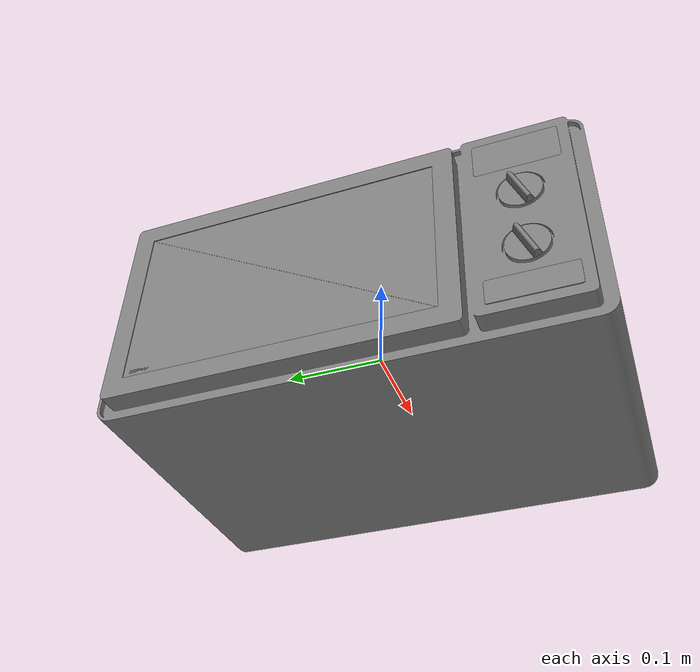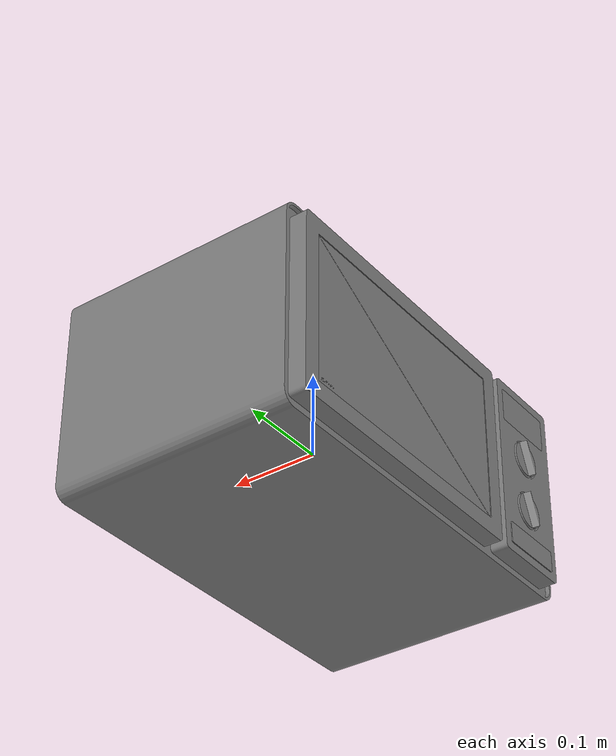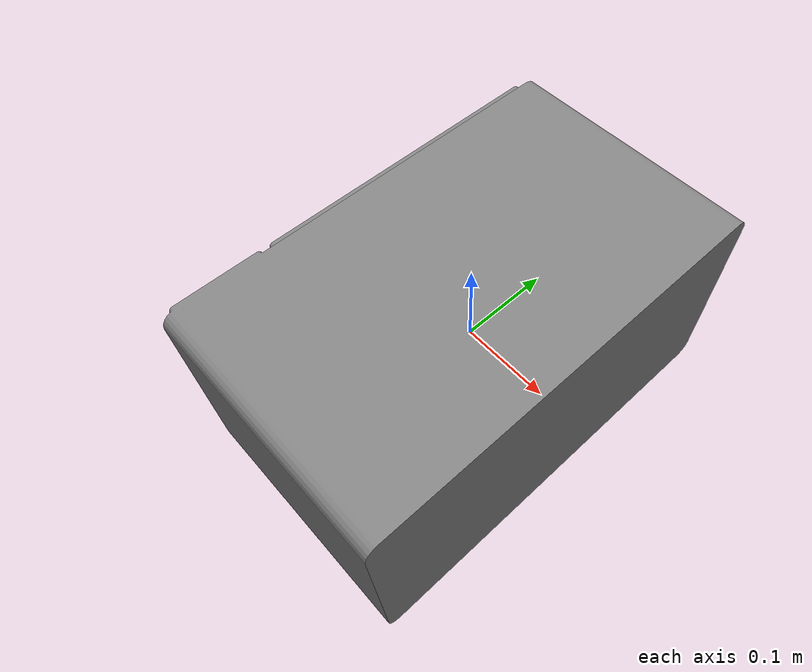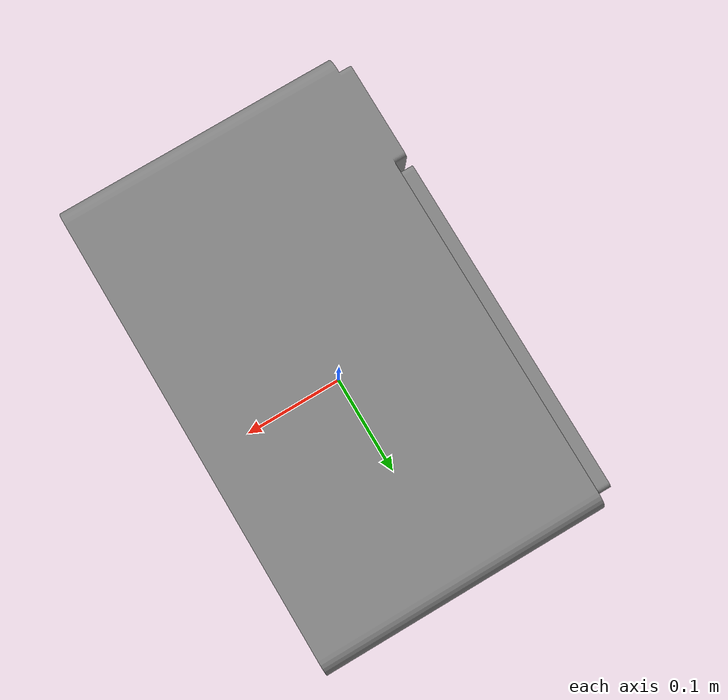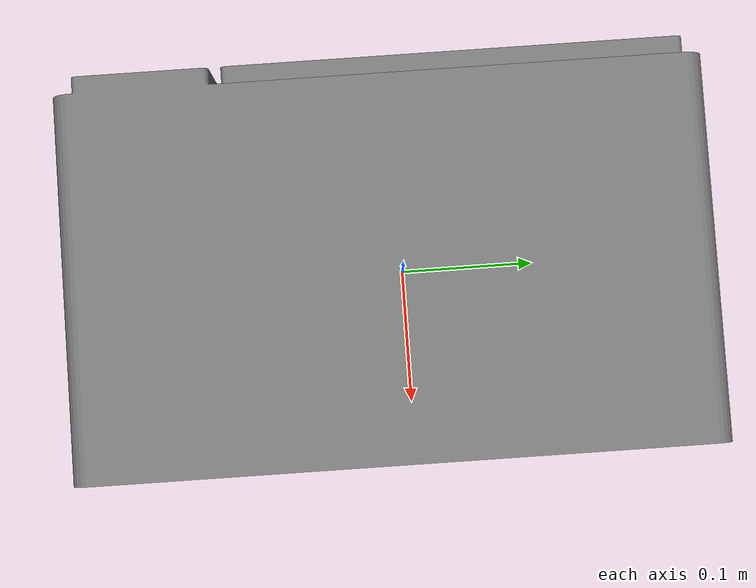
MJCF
<mujoco model="partnet_c75ebd7c340649ba5ad304c2564ae1df">
    <compiler angle="radian" />
    <size njmax="500" nconmax="100" />
    <asset>
        <mesh name="original-2" file="original-2.stl" scale="0.3 0.3 0.3" />
        <mesh name="original-6" file="original-6.stl" scale="0.3 0.3 0.3" />
        <mesh name="original-9" file="original-9.stl" scale="0.3 0.3 0.3" />
        <mesh name="original-8" file="original-8.stl" scale="0.3 0.3 0.3" />
        <mesh name="original-15" file="original-15.stl" scale="0.3 0.3 0.3" />
        <mesh name="original-10" file="original-10.stl" scale="0.3 0.3 0.3" />
        <mesh name="original-12" file="original-12.stl" scale="0.3 0.3 0.3" />
        <mesh name="original-14" file="original-14.stl" scale="0.3 0.3 0.3" />
        <mesh name="original-11" file="original-11.stl" scale="0.3 0.3 0.3" />
        <mesh name="original-13" file="original-13.stl" scale="0.3 0.3 0.3" />
        <mesh name="original-5" file="original-5.stl" scale="0.3 0.3 0.3" />
        <mesh name="original-16" file="original-16.stl" scale="0.3 0.3 0.3" />
        <mesh name="original-22" file="original-22.stl" scale="0.3 0.3 0.3" />
        <mesh name="original-21" file="original-21.stl" scale="0.3 0.3 0.3" />
        <mesh name="original-20" file="original-20.stl" scale="0.3 0.3 0.3" />
        <mesh name="original-44" file="original-44.stl" scale="0.3 0.3 0.3" />
        <mesh name="original-43" file="original-43.stl" scale="0.3 0.3 0.3" />
        <mesh name="original-45" file="original-45.stl" scale="0.3 0.3 0.3" />
        <mesh name="original-41" file="original-41.stl" scale="0.3 0.3 0.3" />
        <mesh name="original-42" file="original-42.stl" scale="0.3 0.3 0.3" />
        <mesh name="original-36" file="original-36.stl" scale="0.3 0.3 0.3" />
        <mesh name="original-26" file="original-26.stl" scale="0.3 0.3 0.3" />
        <mesh name="original-27" file="original-27.stl" scale="0.3 0.3 0.3" />
        <mesh name="original-28" file="original-28.stl" scale="0.3 0.3 0.3" />
        <mesh name="original-29" file="original-29.stl" scale="0.3 0.3 0.3" />
        <mesh name="original-30" file="original-30.stl" scale="0.3 0.3 0.3" />
        <mesh name="original-31" file="original-31.stl" scale="0.3 0.3 0.3" />
        <mesh name="original-34" file="original-34.stl" scale="0.3 0.3 0.3" />
        <mesh name="original-33" file="original-33.stl" scale="0.3 0.3 0.3" />
        <mesh name="original-32" file="original-32.stl" scale="0.3 0.3 0.3" />
        <mesh name="original-35" file="original-35.stl" scale="0.3 0.3 0.3" />
        <mesh name="original-23" file="original-23.stl" scale="0.3 0.3 0.3" />
    </asset>
    <worldbody>
    <body>
        <body name="object">
        <geom quat="0.5 0.5 -0.5 -0.5" type="mesh" group="0" mesh="original-36" contype="0" conaffinity="0" />
        <geom quat="0.5 0.5 -0.5 -0.5" type="mesh" group="0" mesh="original-26" contype="0" conaffinity="0" />
        <geom quat="0.5 0.5 -0.5 -0.5" type="mesh" group="0" mesh="original-27" contype="0" conaffinity="0" />
        <geom quat="0.5 0.5 -0.5 -0.5" type="mesh" group="0" mesh="original-28" contype="0" conaffinity="0" />
        <geom quat="0.5 0.5 -0.5 -0.5" type="mesh" group="0" mesh="original-29" contype="0" conaffinity="0" />
        <geom quat="0.5 0.5 -0.5 -0.5" type="mesh" group="0" mesh="original-30" contype="0" conaffinity="0" />
        <geom quat="0.5 0.5 -0.5 -0.5" type="mesh" group="0" mesh="original-31" contype="0" conaffinity="0" />
        <geom quat="0.5 0.5 -0.5 -0.5" type="mesh" group="0" mesh="original-34" contype="0" conaffinity="0" />
        <geom quat="0.5 0.5 -0.5 -0.5" type="mesh" group="0" mesh="original-33" contype="0" conaffinity="0" />
        <geom quat="0.5 0.5 -0.5 -0.5" type="mesh" group="0" mesh="original-32" contype="0" conaffinity="0" />
        <geom quat="0.5 0.5 -0.5 -0.5" type="mesh" group="0" mesh="original-35" contype="0" conaffinity="0" />
        <geom quat="0.5 0.5 -0.5 -0.5" type="mesh" group="0" mesh="original-23" contype="0" conaffinity="0" />
        <body name="link_0" pos="-0.1378218 0.20982150000000002 0.1115022" quat="0.5 0.5 -0.5 -0.5">
            <inertial pos="0.16598699999999997 -0.1047504 -0.000533961" quat="-1.3515e-05 0.707108 1.75536e-05 0.707105" mass="45.1306" diaginertia="6.75792 4.87961 1.9011" />
            <joint name="joint_0" pos="0.0 0.0 0.0" axis="0 -1 0" limited="true" range="0 1.5708" />
            <geom pos="0.20982150000000002 -0.1115022 -0.1378218" type="mesh" group="0" mesh="original-2" name="panel" />
            <geom pos="0.20982150000000002 -0.1115022 -0.1378218" type="mesh" group="0" mesh="original-6" />
            <geom pos="0.20982150000000002 -0.1115022 -0.1378218" type="mesh" group="0" mesh="original-9" />
            <geom pos="0.20982150000000002 -0.1115022 -0.1378218" type="mesh" group="0" mesh="original-8" />
            <geom pos="0.20982150000000002 -0.1115022 -0.1378218" type="mesh" group="0" mesh="original-15" />
            <geom pos="0.20982150000000002 -0.1115022 -0.1378218" type="mesh" group="0" mesh="original-10" />
            <geom pos="0.20982150000000002 -0.1115022 -0.1378218" type="mesh" group="0" mesh="original-12" />
            <geom pos="0.20982150000000002 -0.1115022 -0.1378218" type="mesh" group="0" mesh="original-14" />
            <geom pos="0.20982150000000002 -0.1115022 -0.1378218" type="mesh" group="0" mesh="original-11" />
            <geom pos="0.20982150000000002 -0.1115022 -0.1378218" type="mesh" group="0" mesh="original-13" />
            <geom pos="0.20982150000000002 -0.1115022 -0.1378218" type="mesh" group="0" mesh="original-5" />
            <geom pos="0.20982150000000002 -0.1115022 -0.1378218" type="mesh" group="0" mesh="original-16" />
        </body>
        <body name="link_1" pos="0.0 0.0 0.0" quat="0.5 0.5 -0.5 -0.5">
            <inertial pos="0.1786683 -0.0760893 0.14498039999999998" quat="0 0.707107 0 0.707107" mass="0.417802" diaginertia="0.00260475 0.00238636 0.000245185" />
            <joint name="joint_1" pos="0.0 0.0 0.0" axis="0 0 -1" type="slide" limited="true" range="0.0012 0.0036" />
            <geom type="mesh" group="0" mesh="original-22" />
        </body>
        <body name="link_2" pos="0.0 -0.1787718 -0.0322887" quat="0.5 0.5 -0.5 -0.5">
            <inertial pos="1.124592e-07 -1.9493069999999998e-07 0.1464942" quat="0.392849 0.587937 -0.39285 0.587935" mass="0.3382" diaginertia="0.000658839 0.00039755 0.000309341" />
            <joint name="joint_2" pos="0.0 0.0 0.0" axis="0 0 1" />
            <geom pos="-0.1787718 0.0322887 0.0" type="mesh" group="0" mesh="original-21" />
        </body>
        <body name="link_3" pos="0.0 -0.1787718 0.0315606" quat="0.5 0.5 -0.5 -0.5">
            <inertial pos="1.7546039999999998e-07 -1.3334699999999998e-07 0.1464942" quat="0.392844 0.587941 -0.392845 0.587939" mass="0.3382" diaginertia="0.000658838 0.000397551 0.00030934" />
            <joint name="joint_3" pos="0.0 0.0 0.0" axis="0 0 1" />
            <geom pos="-0.1787718 -0.0315606 0.0" type="mesh" group="0" mesh="original-20" />
        </body>
        <body name="link_4" pos="0.0071398799999999995 0.0447726 0.0" quat="0.5 0.5 -0.5 -0.5">
            <inertial pos="0.000622782 -0.07810589999999999 -0.00037936499999999994" quat="0.448501 0.546703 0.546495 0.448671" mass="17.2351" diaginertia="1.53162 0.77281 0.76889" />
            <joint name="joint_4" pos="0.0 0.0 0.0" axis="0 1 0" />
            <geom pos="0.0447726 0.0 0.0071398799999999995" type="mesh" group="0" mesh="original-44" />
            <geom pos="0.0447726 0.0 0.0071398799999999995" type="mesh" group="0" mesh="original-43" />
            <geom pos="0.0447726 0.0 0.0071398799999999995" type="mesh" group="0" mesh="original-45" />
            <geom pos="0.0447726 0.0 0.0071398799999999995" type="mesh" group="0" mesh="original-41" />
            <geom pos="0.0447726 0.0 0.0071398799999999995" type="mesh" group="0" mesh="original-42" />
        </body>
        </body>
        <site name="bottom_site" pos="0 0 -0.3" rgba="0 0 0 0" size="0.005" />
        <site name="top_site" pos="0 0 0.3" rgba="0 0 0 0" size="0.005" />
        <site name="horizontal_radius_site" pos="0.3 0 0" rgba="0 0 0 0" size="0.1" />
    </body>
    </worldbody>
</mujoco>
